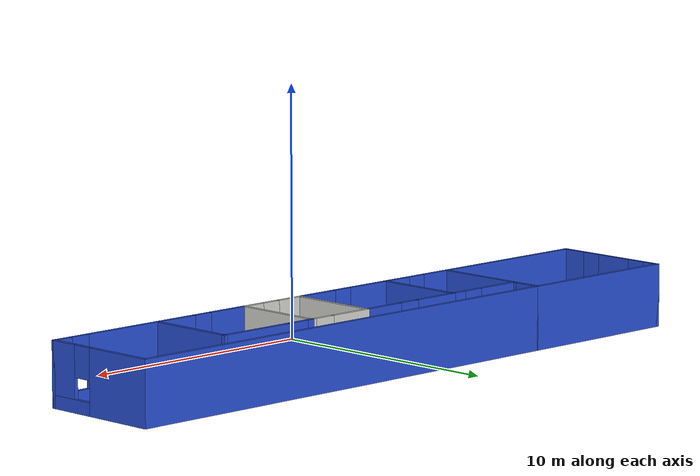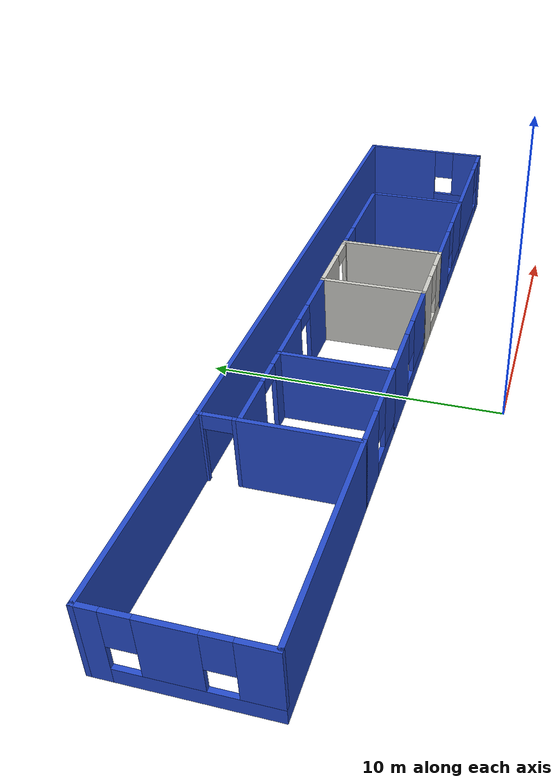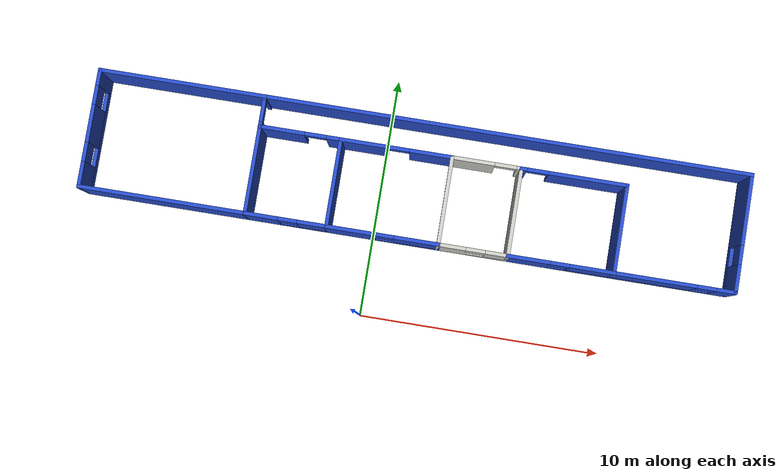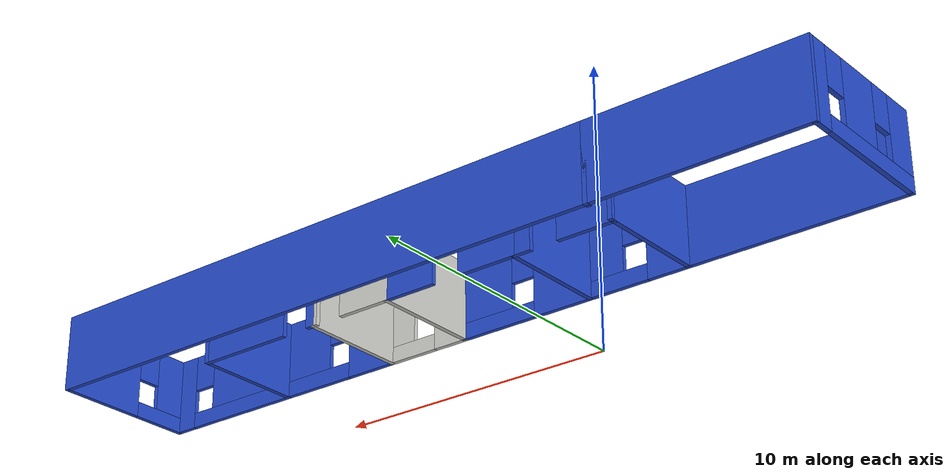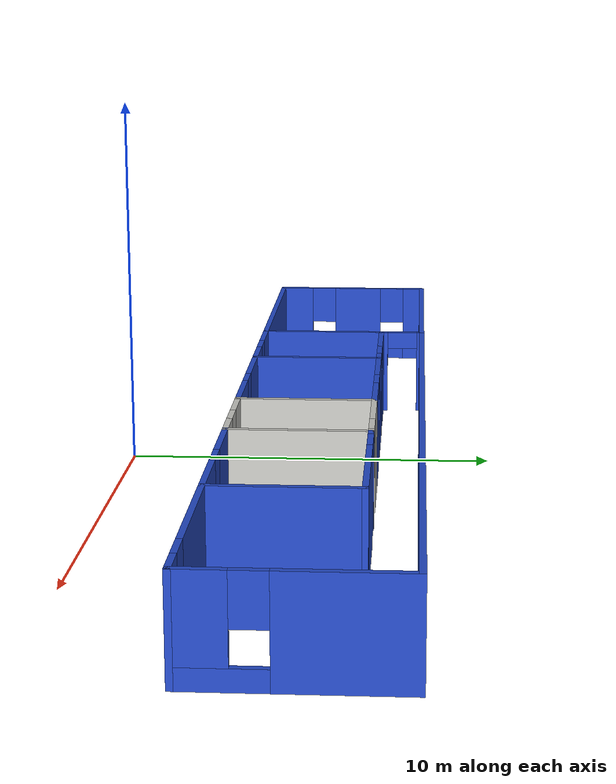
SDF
<?xml version='1.0'?>
<sdf version='1.7'>
  <model name='1147G'>
    <pose>1.41225 4.1051 0 0 -0 0</pose>
    <link name='Wall_11'>
      <collision name='Wall_11_Collision'>
        <geometry>
          <box>
            <size>7 0.15 2.5</size>
          </box>
        </geometry>
        <pose>0 0 1.25 0 -0 0</pose>
      </collision>
      <visual name='Wall_11_Visual'>
        <pose>0 0 1.25 0 -0 0</pose>
        <geometry>
          <box>
            <size>7 0.15 2.5</size>
          </box>
        </geometry>
        <material>
          <script>
            <uri>file://media/materials/scripts/gazebo.material</uri>
            <name>Gazebo/Blue</name>
          </script>
          <ambient>1 1 1 1</ambient>
        </material>
        <meta>
          <layer>0</layer>
        </meta>
      </visual>
      <pose>-10.05 4.0301 0 0 -0 0</pose>
    </link>
    <link name='Wall_14'>
      <pose>-13.475 1.6051 0 0 -0 -1.5708</pose>
      <visual name='Wall_14_Visual_0'>
        <pose>-2.13974 0 1.25 0 -0 0</pose>
        <geometry>
          <box>
            <size>0.720511 0.15 2.5</size>
          </box>
        </geometry>
        <material>
          <script>
            <uri>file://media/materials/scripts/gazebo.material</uri>
            <name>Gazebo/Blue</name>
          </script>
          <ambient>1 1 1 1</ambient>
        </material>
        <meta>
          <layer>0</layer>
        </meta>
      </visual>
      <collision name='Wall_14_Collision_0'>
        <geometry>
          <box>
            <size>0.720511 0.15 2.5</size>
          </box>
        </geometry>
        <pose>-2.13974 0 1.25 0 -0 0</pose>
      </collision>
      <visual name='Wall_14_Visual_1'>
        <pose>0.360256 0 0.25 0 -0 0</pose>
        <geometry>
          <box>
            <size>4.27949 0.15 0.5</size>
          </box>
        </geometry>
        <material>
          <script>
            <uri>file://media/materials/scripts/gazebo.material</uri>
            <name>Gazebo/Blue</name>
          </script>
          <ambient>1 1 1 1</ambient>
        </material>
        <meta>
          <layer>0</layer>
        </meta>
      </visual>
      <collision name='Wall_14_Collision_1'>
        <geometry>
          <box>
            <size>4.27949 0.15 0.5</size>
          </box>
        </geometry>
        <pose>0.360256 0 0.25 0 -0 0</pose>
      </collision>
      <visual name='Wall_14_Visual_2'>
        <pose>-0.192788 0 1.5 0 -0 0</pose>
        <geometry>
          <box>
            <size>1.5734 0.15 2</size>
          </box>
        </geometry>
        <material>
          <script>
            <uri>file://media/materials/scripts/gazebo.material</uri>
            <name>Gazebo/Blue</name>
          </script>
          <ambient>1 1 1 1</ambient>
        </material>
        <meta>
          <layer>0</layer>
        </meta>
      </visual>
      <collision name='Wall_14_Collision_2'>
        <geometry>
          <box>
            <size>1.5734 0.15 2</size>
          </box>
        </geometry>
        <pose>-0.192788 0 1.5 0 -0 0</pose>
      </collision>
      <visual name='Wall_14_Visual_3'>
        <pose>1.94696 0 1.5 0 -0 0</pose>
        <geometry>
          <box>
            <size>1.10609 0.15 2</size>
          </box>
        </geometry>
        <material>
          <script>
            <uri>file://media/materials/scripts/gazebo.material</uri>
            <name>Gazebo/Blue</name>
          </script>
          <ambient>1 1 1 1</ambient>
        </material>
        <meta>
          <layer>0</layer>
        </meta>
      </visual>
      <collision name='Wall_14_Collision_3'>
        <geometry>
          <box>
            <size>1.10609 0.15 2</size>
          </box>
        </geometry>
        <pose>1.94696 0 1.5 0 -0 0</pose>
      </collision>
      <visual name='Wall_14_Visual_4'>
        <pose>-1.37949 0 1.9 0 -0 0</pose>
        <geometry>
          <box>
            <size>0.8 0.15 1.2</size>
          </box>
        </geometry>
        <material>
          <script>
            <uri>file://media/materials/scripts/gazebo.material</uri>
            <name>Gazebo/Blue</name>
          </script>
          <ambient>1 1 1 1</ambient>
        </material>
        <meta>
          <layer>0</layer>
        </meta>
      </visual>
      <collision name='Wall_14_Collision_4'>
        <geometry>
          <box>
            <size>0.8 0.15 1.2</size>
          </box>
        </geometry>
        <pose>-1.37949 0 1.9 0 -0 0</pose>
      </collision>
      <visual name='Wall_14_Visual_5'>
        <pose>0.993912 0 1.9 0 -0 0</pose>
        <geometry>
          <box>
            <size>0.8 0.15 1.2</size>
          </box>
        </geometry>
        <material>
          <script>
            <uri>file://media/materials/scripts/gazebo.material</uri>
            <name>Gazebo/Blue</name>
          </script>
          <ambient>1 1 1 1</ambient>
        </material>
        <meta>
          <layer>0</layer>
        </meta>
      </visual>
      <collision name='Wall_14_Collision_5'>
        <geometry>
          <box>
            <size>0.8 0.15 1.2</size>
          </box>
        </geometry>
        <pose>0.993912 0 1.9 0 -0 0</pose>
      </collision>
    </link>
    <link name='Wall_15'>
      <collision name='Wall_15_Collision'>
        <geometry>
          <box>
            <size>7 0.15 2.5</size>
          </box>
        </geometry>
        <pose>0 0 1.25 0 -0 0</pose>
      </collision>
      <visual name='Wall_15_Visual'>
        <pose>0 0 1.25 0 -0 0</pose>
        <geometry>
          <box>
            <size>7 0.15 2.5</size>
          </box>
        </geometry>
        <material>
          <script>
            <uri>file://media/materials/scripts/gazebo.material</uri>
            <name>Gazebo/Blue</name>
          </script>
          <ambient>1 1 1 1</ambient>
        </material>
        <meta>
          <layer>0</layer>
        </meta>
      </visual>
      <pose>-10.05 -0.819903 0 0 -0 0</pose>
    </link>
    <link name='Wall_16'>
      <collision name='Wall_16_Collision'>
        <geometry>
          <box>
            <size>3.75 0.15 2.5</size>
          </box>
        </geometry>
        <pose>0 0 1.25 0 -0 0</pose>
      </collision>
      <visual name='Wall_16_Visual'>
        <pose>0 0 1.25 0 -0 0</pose>
        <geometry>
          <box>
            <size>3.75 0.15 2.5</size>
          </box>
        </geometry>
        <material>
          <script>
            <uri>file://media/materials/scripts/gazebo.material</uri>
            <name>Gazebo/Blue</name>
          </script>
          <ambient>1 1 1 1</ambient>
        </material>
        <meta>
          <layer>0</layer>
        </meta>
      </visual>
      <pose>-6.625 0.980097 0 0 -0 1.5708</pose>
    </link>
    <link name='Wall_18'>
      <pose>-4.95 -0.819903 0 0 -0 0</pose>
      <visual name='Wall_18_Visual_0'>
        <pose>-1.04538 0 1.25 0 -0 0</pose>
        <geometry>
          <box>
            <size>1.40924 0.15 2.5</size>
          </box>
        </geometry>
        <material>
          <script>
            <uri>file://media/materials/scripts/gazebo.material</uri>
            <name>Gazebo/Blue</name>
          </script>
          <ambient>1 1 1 1</ambient>
        </material>
        <meta>
          <layer>0</layer>
        </meta>
      </visual>
      <collision name='Wall_18_Collision_0'>
        <geometry>
          <box>
            <size>1.40924 0.15 2.5</size>
          </box>
        </geometry>
        <pose>-1.04538 0 1.25 0 -0 0</pose>
      </collision>
      <visual name='Wall_18_Visual_1'>
        <pose>0.704619 0 0.25 0 -0 0</pose>
        <geometry>
          <box>
            <size>2.09076 0.15 0.5</size>
          </box>
        </geometry>
        <material>
          <script>
            <uri>file://media/materials/scripts/gazebo.material</uri>
            <name>Gazebo/Blue</name>
          </script>
          <ambient>1 1 1 1</ambient>
        </material>
        <meta>
          <layer>0</layer>
        </meta>
      </visual>
      <collision name='Wall_18_Collision_1'>
        <geometry>
          <box>
            <size>2.09076 0.15 0.5</size>
          </box>
        </geometry>
        <pose>0.704619 0 0.25 0 -0 0</pose>
      </collision>
      <visual name='Wall_18_Visual_2'>
        <pose>1.10462 0 1.5 0 -0 0</pose>
        <geometry>
          <box>
            <size>1.29076 0.15 2</size>
          </box>
        </geometry>
        <material>
          <script>
            <uri>file://media/materials/scripts/gazebo.material</uri>
            <name>Gazebo/Blue</name>
          </script>
          <ambient>1 1 1 1</ambient>
        </material>
        <meta>
          <layer>0</layer>
        </meta>
      </visual>
      <collision name='Wall_18_Collision_2'>
        <geometry>
          <box>
            <size>1.29076 0.15 2</size>
          </box>
        </geometry>
        <pose>1.10462 0 1.5 0 -0 0</pose>
      </collision>
      <visual name='Wall_18_Visual_3'>
        <pose>0.059238 0 1.9 0 -0 0</pose>
        <geometry>
          <box>
            <size>0.8 0.15 1.2</size>
          </box>
        </geometry>
        <material>
          <script>
            <uri>file://media/materials/scripts/gazebo.material</uri>
            <name>Gazebo/Blue</name>
          </script>
          <ambient>1 1 1 1</ambient>
        </material>
        <meta>
          <layer>0</layer>
        </meta>
      </visual>
      <collision name='Wall_18_Collision_3'>
        <geometry>
          <box>
            <size>0.8 0.15 1.2</size>
          </box>
        </geometry>
        <pose>0.059238 0 1.9 0 -0 0</pose>
      </collision>
    </link>
    <link name='Wall_19'>
      <collision name='Wall_19_Collision'>
        <geometry>
          <box>
            <size>3.75 0.15 2.5</size>
          </box>
        </geometry>
        <pose>0 0 1.25 0 -0 0</pose>
      </collision>
      <visual name='Wall_19_Visual'>
        <pose>0 0 1.25 0 -0 0</pose>
        <geometry>
          <box>
            <size>3.75 0.15 2.5</size>
          </box>
        </geometry>
        <material>
          <script>
            <uri>file://media/materials/scripts/gazebo.material</uri>
            <name>Gazebo/Blue</name>
          </script>
          <ambient>1 1 1 1</ambient>
        </material>
        <meta>
          <layer>0</layer>
        </meta>
      </visual>
      <pose>-3.275 0.980097 0 0 -0 1.5708</pose>
    </link>
    <link name='Wall_21'>
      <pose>-0.975 -0.819903 0 0 -0 0</pose>
      <visual name='Wall_21_Visual_0'>
        <pose>-1.35414 0 1.25 0 -0 0</pose>
        <geometry>
          <box>
            <size>2.04173 0.15 2.5</size>
          </box>
        </geometry>
        <material>
          <script>
            <uri>file://media/materials/scripts/gazebo.material</uri>
            <name>Gazebo/Blue</name>
          </script>
          <ambient>1 1 1 1</ambient>
        </material>
        <meta>
          <layer>0</layer>
        </meta>
      </visual>
      <collision name='Wall_21_Collision_0'>
        <geometry>
          <box>
            <size>2.04173 0.15 2.5</size>
          </box>
        </geometry>
        <pose>-1.35414 0 1.25 0 -0 0</pose>
      </collision>
      <visual name='Wall_21_Visual_1'>
        <pose>1.02086 0 0.25 0 -0 0</pose>
        <geometry>
          <box>
            <size>2.70827 0.15 0.5</size>
          </box>
        </geometry>
        <material>
          <script>
            <uri>file://media/materials/scripts/gazebo.material</uri>
            <name>Gazebo/Blue</name>
          </script>
          <ambient>1 1 1 1</ambient>
        </material>
        <meta>
          <layer>0</layer>
        </meta>
      </visual>
      <collision name='Wall_21_Collision_1'>
        <geometry>
          <box>
            <size>2.70827 0.15 0.5</size>
          </box>
        </geometry>
        <pose>1.02086 0 0.25 0 -0 0</pose>
      </collision>
      <visual name='Wall_21_Visual_2'>
        <pose>1.42086 0 1.5 0 -0 0</pose>
        <geometry>
          <box>
            <size>1.90827 0.15 2</size>
          </box>
        </geometry>
        <material>
          <script>
            <uri>file://media/materials/scripts/gazebo.material</uri>
            <name>Gazebo/Blue</name>
          </script>
          <ambient>1 1 1 1</ambient>
        </material>
        <meta>
          <layer>0</layer>
        </meta>
      </visual>
      <collision name='Wall_21_Collision_2'>
        <geometry>
          <box>
            <size>1.90827 0.15 2</size>
          </box>
        </geometry>
        <pose>1.42086 0 1.5 0 -0 0</pose>
      </collision>
      <visual name='Wall_21_Visual_3'>
        <pose>0.066725 0 1.9 0 -0 0</pose>
        <geometry>
          <box>
            <size>0.8 0.15 1.2</size>
          </box>
        </geometry>
        <material>
          <script>
            <uri>file://media/materials/scripts/gazebo.material</uri>
            <name>Gazebo/Blue</name>
          </script>
          <ambient>1 1 1 1</ambient>
        </material>
        <meta>
          <layer>0</layer>
        </meta>
      </visual>
      <collision name='Wall_21_Collision_3'>
        <geometry>
          <box>
            <size>0.8 0.15 1.2</size>
          </box>
        </geometry>
        <pose>0.066725 0 1.9 0 -0 0</pose>
      </collision>
    </link>
    <link name='Wall_22'>
      <collision name='Wall_22_Collision'>
        <geometry>
          <box>
            <size>3.75 0.15 2.5</size>
          </box>
        </geometry>
        <pose>0 0 1.25 0 -0 0</pose>
      </collision>
      <visual name='Wall_22_Visual'>
        <pose>0 0 1.25 0 -0 0</pose>
        <geometry>
          <box>
            <size>3.75 0.15 2.5</size>
          </box>
        </geometry>
        <material>
          <script>
            <uri>file://media/materials/scripts/gazebo.material</uri>
            <name>Gazebo/CeilingTiled</name>
          </script>
          <ambient>1 1 1 1</ambient>
        </material>
        <meta>
          <layer>0</layer>
        </meta>
      </visual>
      <pose>1.325 0.980097 0 0 -0 1.5708</pose>
    </link>
    <link name='Wall_24'>
      <pose>2.75 -0.819903 0 0 -0 0</pose>
      <visual name='Wall_24_Visual_0'>
        <pose>-0.898519 0 1.25 0 -0 0</pose>
        <geometry>
          <box>
            <size>1.20296 0.15 2.5</size>
          </box>
        </geometry>
        <material>
          <script>
            <uri>file://media/materials/scripts/gazebo.material</uri>
            <name>Gazebo/CeilingTiled</name>
          </script>
          <ambient>1 1 1 1</ambient>
        </material>
        <meta>
          <layer>0</layer>
        </meta>
      </visual>
      <collision name='Wall_24_Collision_0'>
        <geometry>
          <box>
            <size>1.20296 0.15 2.5</size>
          </box>
        </geometry>
        <pose>-0.898519 0 1.25 0 -0 0</pose>
      </collision>
      <visual name='Wall_24_Visual_1'>
        <pose>0.601481 0 0.25 0 -0 0</pose>
        <geometry>
          <box>
            <size>1.79704 0.15 0.5</size>
          </box>
        </geometry>
        <material>
          <script>
            <uri>file://media/materials/scripts/gazebo.material</uri>
            <name>Gazebo/CeilingTiled</name>
          </script>
          <ambient>1 1 1 1</ambient>
        </material>
        <meta>
          <layer>0</layer>
        </meta>
      </visual>
      <collision name='Wall_24_Collision_1'>
        <geometry>
          <box>
            <size>1.79704 0.15 0.5</size>
          </box>
        </geometry>
        <pose>0.601481 0 0.25 0 -0 0</pose>
      </collision>
      <visual name='Wall_24_Visual_2'>
        <pose>1.00148 0 1.5 0 -0 0</pose>
        <geometry>
          <box>
            <size>0.997037 0.15 2</size>
          </box>
        </geometry>
        <material>
          <script>
            <uri>file://media/materials/scripts/gazebo.material</uri>
            <name>Gazebo/CeilingTiled</name>
          </script>
          <ambient>1 1 1 1</ambient>
        </material>
        <meta>
          <layer>0</layer>
        </meta>
      </visual>
      <collision name='Wall_24_Collision_2'>
        <geometry>
          <box>
            <size>0.997037 0.15 2</size>
          </box>
        </geometry>
        <pose>1.00148 0 1.5 0 -0 0</pose>
      </collision>
      <visual name='Wall_24_Visual_3'>
        <pose>0.102963 0 1.9 0 -0 0</pose>
        <geometry>
          <box>
            <size>0.8 0.15 1.2</size>
          </box>
        </geometry>
        <material>
          <script>
            <uri>file://media/materials/scripts/gazebo.material</uri>
            <name>Gazebo/CeilingTiled</name>
          </script>
          <ambient>1 1 1 1</ambient>
        </material>
        <meta>
          <layer>0</layer>
        </meta>
      </visual>
      <collision name='Wall_24_Collision_3'>
        <geometry>
          <box>
            <size>0.8 0.15 1.2</size>
          </box>
        </geometry>
        <pose>0.102963 0 1.9 0 -0 0</pose>
      </collision>
    </link>
    <link name='Wall_25'>
      <collision name='Wall_25_Collision'>
        <geometry>
          <box>
            <size>3.75 0.15 2.5</size>
          </box>
        </geometry>
        <pose>0 0 1.25 0 -0 0</pose>
      </collision>
      <visual name='Wall_25_Visual'>
        <pose>0 0 1.25 0 -0 0</pose>
        <geometry>
          <box>
            <size>3.75 0.15 2.5</size>
          </box>
        </geometry>
        <material>
          <script>
            <uri>file://media/materials/scripts/gazebo.material</uri>
            <name>Gazebo/CeilingTiled</name>
          </script>
          <ambient>1 1 1 1</ambient>
        </material>
        <meta>
          <layer>0</layer>
        </meta>
      </visual>
      <pose>4.175 0.980097 0 0 -0 1.5708</pose>
    </link>
    <link name='Wall_27'>
      <pose>6.35 -0.819903 0 0 -0 0</pose>
      <visual name='Wall_27_Visual_0'>
        <pose>-1.34375 0 1.25 0 -0 0</pose>
        <geometry>
          <box>
            <size>1.8125 0.15 2.5</size>
          </box>
        </geometry>
        <material>
          <script>
            <uri>file://media/materials/scripts/gazebo.material</uri>
            <name>Gazebo/Blue</name>
          </script>
          <ambient>1 1 1 1</ambient>
        </material>
        <meta>
          <layer>0</layer>
        </meta>
      </visual>
      <collision name='Wall_27_Collision_0'>
        <geometry>
          <box>
            <size>1.8125 0.15 2.5</size>
          </box>
        </geometry>
        <pose>-1.34375 0 1.25 0 -0 0</pose>
      </collision>
      <visual name='Wall_27_Visual_1'>
        <pose>0.906249 0 0.25 0 -0 0</pose>
        <geometry>
          <box>
            <size>2.6875 0.15 0.5</size>
          </box>
        </geometry>
        <material>
          <script>
            <uri>file://media/materials/scripts/gazebo.material</uri>
            <name>Gazebo/Blue</name>
          </script>
          <ambient>1 1 1 1</ambient>
        </material>
        <meta>
          <layer>0</layer>
        </meta>
      </visual>
      <collision name='Wall_27_Collision_1'>
        <geometry>
          <box>
            <size>2.6875 0.15 0.5</size>
          </box>
        </geometry>
        <pose>0.906249 0 0.25 0 -0 0</pose>
      </collision>
      <visual name='Wall_27_Visual_2'>
        <pose>1.30625 0 1.5 0 -0 0</pose>
        <geometry>
          <box>
            <size>1.8875 0.15 2</size>
          </box>
        </geometry>
        <material>
          <script>
            <uri>file://media/materials/scripts/gazebo.material</uri>
            <name>Gazebo/Blue</name>
          </script>
          <ambient>1 1 1 1</ambient>
        </material>
        <meta>
          <layer>0</layer>
        </meta>
      </visual>
      <collision name='Wall_27_Collision_2'>
        <geometry>
          <box>
            <size>1.8875 0.15 2</size>
          </box>
        </geometry>
        <pose>1.30625 0 1.5 0 -0 0</pose>
      </collision>
      <visual name='Wall_27_Visual_3'>
        <pose>-0.037502 0 1.9 0 -0 0</pose>
        <geometry>
          <box>
            <size>0.8 0.15 1.2</size>
          </box>
        </geometry>
        <material>
          <script>
            <uri>file://media/materials/scripts/gazebo.material</uri>
            <name>Gazebo/Blue</name>
          </script>
          <ambient>1 1 1 1</ambient>
        </material>
        <meta>
          <layer>0</layer>
        </meta>
      </visual>
      <collision name='Wall_27_Collision_3'>
        <geometry>
          <box>
            <size>0.8 0.15 1.2</size>
          </box>
        </geometry>
        <pose>-0.037502 0 1.9 0 -0 0</pose>
      </collision>
    </link>
    <link name='Wall_28'>
      <collision name='Wall_28_Collision'>
        <geometry>
          <box>
            <size>3.75 0.15 2.5</size>
          </box>
        </geometry>
        <pose>0 0 1.25 0 -0 0</pose>
      </collision>
      <visual name='Wall_28_Visual'>
        <pose>0 0 1.25 0 -0 0</pose>
        <geometry>
          <box>
            <size>3.75 0.15 2.5</size>
          </box>
        </geometry>
        <material>
          <script>
            <uri>file://media/materials/scripts/gazebo.material</uri>
            <name>Gazebo/Blue</name>
          </script>
          <ambient>1 1 1 1</ambient>
        </material>
        <meta>
          <layer>0</layer>
        </meta>
      </visual>
      <pose>8.525 0.980097 0 0 -0 1.5708</pose>
    </link>
    <link name='Wall_30'>
      <pose>6.35 2.7801 0 0 -0 3.14159</pose>
      <visual name='Wall_30_Visual_0'>
        <pose>-0.60716 0 1.25 0 -0 0</pose>
        <geometry>
          <box>
            <size>3.28568 0.15 2.5</size>
          </box>
        </geometry>
        <material>
          <script>
            <uri>file://media/materials/scripts/gazebo.material</uri>
            <name>Gazebo/Blue</name>
          </script>
          <ambient>1 1 1 1</ambient>
        </material>
        <meta>
          <layer>0</layer>
        </meta>
      </visual>
      <collision name='Wall_30_Collision_0'>
        <geometry>
          <box>
            <size>3.28568 0.15 2.5</size>
          </box>
        </geometry>
        <pose>-0.60716 0 1.25 0 -0 0</pose>
      </collision>
      <visual name='Wall_30_Visual_1'>
        <pose>2.09284 0 1.25 0 -0 0</pose>
        <geometry>
          <box>
            <size>0.31432 0.15 2.5</size>
          </box>
        </geometry>
        <material>
          <script>
            <uri>file://media/materials/scripts/gazebo.material</uri>
            <name>Gazebo/Blue</name>
          </script>
          <ambient>1 1 1 1</ambient>
        </material>
        <meta>
          <layer>0</layer>
        </meta>
      </visual>
      <collision name='Wall_30_Collision_1'>
        <geometry>
          <box>
            <size>0.31432 0.15 2.5</size>
          </box>
        </geometry>
        <pose>2.09284 0 1.25 0 -0 0</pose>
      </collision>
      <visual name='Wall_30_Visual_2'>
        <pose>1.48568 0 2.25 0 -0 0</pose>
        <geometry>
          <box>
            <size>0.9 0.15 0.5</size>
          </box>
        </geometry>
        <material>
          <script>
            <uri>file://media/materials/scripts/gazebo.material</uri>
            <name>Gazebo/Blue</name>
          </script>
          <ambient>1 1 1 1</ambient>
        </material>
        <meta>
          <layer>0</layer>
        </meta>
      </visual>
      <collision name='Wall_30_Collision_2'>
        <geometry>
          <box>
            <size>0.9 0.15 0.5</size>
          </box>
        </geometry>
        <pose>1.48568 0 2.25 0 -0 0</pose>
      </collision>
    </link>
    <link name='Wall_31'>
      <pose>2.75 2.7801 0 0 -0 3.14159</pose>
      <visual name='Wall_31_Visual_0'>
        <pose>-1.36841 0 1.25 0 -0 0</pose>
        <geometry>
          <box>
            <size>0.263175 0.15 2.5</size>
          </box>
        </geometry>
        <material>
          <script>
            <uri>file://media/materials/scripts/gazebo.material</uri>
            <name>Gazebo/CeilingTiled</name>
          </script>
          <ambient>1 1 1 1</ambient>
        </material>
        <meta>
          <layer>0</layer>
        </meta>
      </visual>
      <collision name='Wall_31_Collision_0'>
        <geometry>
          <box>
            <size>0.263175 0.15 2.5</size>
          </box>
        </geometry>
        <pose>-1.36841 0 1.25 0 -0 0</pose>
      </collision>
      <visual name='Wall_31_Visual_1'>
        <pose>0.581588 0 1.25 0 -0 0</pose>
        <geometry>
          <box>
            <size>1.83682 0.15 2.5</size>
          </box>
        </geometry>
        <material>
          <script>
            <uri>file://media/materials/scripts/gazebo.material</uri>
            <name>Gazebo/CeilingTiled</name>
          </script>
          <ambient>1 1 1 1</ambient>
        </material>
        <meta>
          <layer>0</layer>
        </meta>
      </visual>
      <collision name='Wall_31_Collision_1'>
        <geometry>
          <box>
            <size>1.83682 0.15 2.5</size>
          </box>
        </geometry>
        <pose>0.581588 0 1.25 0 -0 0</pose>
      </collision>
      <visual name='Wall_31_Visual_2'>
        <pose>-0.786825 0 2.25 0 -0 0</pose>
        <geometry>
          <box>
            <size>0.9 0.15 0.5</size>
          </box>
        </geometry>
        <material>
          <script>
            <uri>file://media/materials/scripts/gazebo.material</uri>
            <name>Gazebo/CeilingTiled</name>
          </script>
          <ambient>1 1 1 1</ambient>
        </material>
        <meta>
          <layer>0</layer>
        </meta>
      </visual>
      <collision name='Wall_31_Collision_2'>
        <geometry>
          <box>
            <size>0.9 0.15 0.5</size>
          </box>
        </geometry>
        <pose>-0.786825 0 2.25 0 -0 0</pose>
      </collision>
    </link>
    <link name='Wall_32'>
      <pose>-0.975 2.7801 0 0 -0 3.14159</pose>
      <visual name='Wall_32_Visual_0'>
        <pose>-1.45592 0 1.25 0 -0 0</pose>
        <geometry>
          <box>
            <size>1.83816 0.15 2.5</size>
          </box>
        </geometry>
        <material>
          <script>
            <uri>file://media/materials/scripts/gazebo.material</uri>
            <name>Gazebo/Blue</name>
          </script>
          <ambient>1 1 1 1</ambient>
        </material>
        <meta>
          <layer>0</layer>
        </meta>
      </visual>
      <collision name='Wall_32_Collision_0'>
        <geometry>
          <box>
            <size>1.83816 0.15 2.5</size>
          </box>
        </geometry>
        <pose>-1.45592 0 1.25 0 -0 0</pose>
      </collision>
      <visual name='Wall_32_Visual_1'>
        <pose>1.36908 0 1.25 0 -0 0</pose>
        <geometry>
          <box>
            <size>2.01184 0.15 2.5</size>
          </box>
        </geometry>
        <material>
          <script>
            <uri>file://media/materials/scripts/gazebo.material</uri>
            <name>Gazebo/Blue</name>
          </script>
          <ambient>1 1 1 1</ambient>
        </material>
        <meta>
          <layer>0</layer>
        </meta>
      </visual>
      <collision name='Wall_32_Collision_1'>
        <geometry>
          <box>
            <size>2.01184 0.15 2.5</size>
          </box>
        </geometry>
        <pose>1.36908 0 1.25 0 -0 0</pose>
      </collision>
      <visual name='Wall_32_Visual_2'>
        <pose>-0.086839 0 2.25 0 -0 0</pose>
        <geometry>
          <box>
            <size>0.9 0.15 0.5</size>
          </box>
        </geometry>
        <material>
          <script>
            <uri>file://media/materials/scripts/gazebo.material</uri>
            <name>Gazebo/Blue</name>
          </script>
          <ambient>1 1 1 1</ambient>
        </material>
        <meta>
          <layer>0</layer>
        </meta>
      </visual>
      <collision name='Wall_32_Collision_2'>
        <geometry>
          <box>
            <size>0.9 0.15 0.5</size>
          </box>
        </geometry>
        <pose>-0.086839 0 2.25 0 -0 0</pose>
      </collision>
    </link>
    <link name='Wall_33'>
      <pose>-4.95 2.7801 0 0 -0 3.14159</pose>
      <visual name='Wall_33_Visual_0'>
        <pose>-1.41121 0 1.25 0 -0 0</pose>
        <geometry>
          <box>
            <size>0.677582 0.15 2.5</size>
          </box>
        </geometry>
        <material>
          <script>
            <uri>file://media/materials/scripts/gazebo.material</uri>
            <name>Gazebo/Blue</name>
          </script>
          <ambient>1 1 1 1</ambient>
        </material>
        <meta>
          <layer>0</layer>
        </meta>
      </visual>
      <collision name='Wall_33_Collision_0'>
        <geometry>
          <box>
            <size>0.677582 0.15 2.5</size>
          </box>
        </geometry>
        <pose>-1.41121 0 1.25 0 -0 0</pose>
      </collision>
      <visual name='Wall_33_Visual_1'>
        <pose>0.788791 0 1.25 0 -0 0</pose>
        <geometry>
          <box>
            <size>1.92242 0.15 2.5</size>
          </box>
        </geometry>
        <material>
          <script>
            <uri>file://media/materials/scripts/gazebo.material</uri>
            <name>Gazebo/Blue</name>
          </script>
          <ambient>1 1 1 1</ambient>
        </material>
        <meta>
          <layer>0</layer>
        </meta>
      </visual>
      <collision name='Wall_33_Collision_1'>
        <geometry>
          <box>
            <size>1.92242 0.15 2.5</size>
          </box>
        </geometry>
        <pose>0.788791 0 1.25 0 -0 0</pose>
      </collision>
      <visual name='Wall_33_Visual_2'>
        <pose>-0.622418 0 2.25 0 -0 0</pose>
        <geometry>
          <box>
            <size>0.9 0.15 0.5</size>
          </box>
        </geometry>
        <material>
          <script>
            <uri>file://media/materials/scripts/gazebo.material</uri>
            <name>Gazebo/Blue</name>
          </script>
          <ambient>1 1 1 1</ambient>
        </material>
        <meta>
          <layer>0</layer>
        </meta>
      </visual>
      <collision name='Wall_33_Collision_2'>
        <geometry>
          <box>
            <size>0.9 0.15 0.5</size>
          </box>
        </geometry>
        <pose>-0.622418 0 2.25 0 -0 0</pose>
      </collision>
    </link>
    <link name='Wall_34'>
      <pose>-6.625 3.4051 0 0 -0 1.5708</pose>
      <visual name='Wall_34_Visual_0'>
        <pose>-0.564006 0 1.25 0 -0 0</pose>
        <geometry>
          <box>
            <size>0.271987 0.15 2.5</size>
          </box>
        </geometry>
        <material>
          <script>
            <uri>file://media/materials/scripts/gazebo.material</uri>
            <name>Gazebo/Blue</name>
          </script>
          <ambient>1 1 1 1</ambient>
        </material>
        <meta>
          <layer>0</layer>
        </meta>
      </visual>
      <collision name='Wall_34_Collision_0'>
        <geometry>
          <box>
            <size>0.271987 0.15 2.5</size>
          </box>
        </geometry>
        <pose>-0.564006 0 1.25 0 -0 0</pose>
      </collision>
      <visual name='Wall_34_Visual_1'>
        <pose>0.585994 0 1.25 0 -0 0</pose>
        <geometry>
          <box>
            <size>0.228013 0.15 2.5</size>
          </box>
        </geometry>
        <material>
          <script>
            <uri>file://media/materials/scripts/gazebo.material</uri>
            <name>Gazebo/Blue</name>
          </script>
          <ambient>1 1 1 1</ambient>
        </material>
        <meta>
          <layer>0</layer>
        </meta>
      </visual>
      <collision name='Wall_34_Collision_1'>
        <geometry>
          <box>
            <size>0.228013 0.15 2.5</size>
          </box>
        </geometry>
        <pose>0.585994 0 1.25 0 -0 0</pose>
      </collision>
      <visual name='Wall_34_Visual_2'>
        <pose>0.021987 0 2.25 0 -0 0</pose>
        <geometry>
          <box>
            <size>0.9 0.15 0.5</size>
          </box>
        </geometry>
        <material>
          <script>
            <uri>file://media/materials/scripts/gazebo.material</uri>
            <name>Gazebo/Blue</name>
          </script>
          <ambient>1 1 1 1</ambient>
        </material>
        <meta>
          <layer>0</layer>
        </meta>
      </visual>
      <collision name='Wall_34_Collision_2'>
        <geometry>
          <box>
            <size>0.9 0.15 0.5</size>
          </box>
        </geometry>
        <pose>0.021987 0 2.25 0 -0 0</pose>
      </collision>
    </link>
    <link name='Wall_35'>
      <collision name='Wall_35_Collision'>
        <geometry>
          <box>
            <size>20.25 0.15 2.5</size>
          </box>
        </geometry>
        <pose>0 0 1.25 0 -0 0</pose>
      </collision>
      <visual name='Wall_35_Visual'>
        <pose>0 0 1.25 0 -0 0</pose>
        <geometry>
          <box>
            <size>20.25 0.15 2.5</size>
          </box>
        </geometry>
        <material>
          <script>
            <uri>file://media/materials/scripts/gazebo.material</uri>
            <name>Gazebo/Blue</name>
          </script>
          <ambient>1 1 1 1</ambient>
        </material>
        <meta>
          <layer>0</layer>
        </meta>
      </visual>
      <pose>3.425 4.0301 0 0 -0 0</pose>
    </link>
    <link name='Wall_36'>
      <pose>13.475 1.6051 0 0 -0 -1.5708</pose>
      <visual name='Wall_36_Visual_0'>
        <pose>-1.01338 0 1.25 0 -0 0</pose>
        <geometry>
          <box>
            <size>2.97323 0.15 2.5</size>
          </box>
        </geometry>
        <material>
          <script>
            <uri>file://media/materials/scripts/gazebo.material</uri>
            <name>Gazebo/Blue</name>
          </script>
          <ambient>1 1 1 1</ambient>
        </material>
        <meta>
          <layer>0</layer>
        </meta>
      </visual>
      <collision name='Wall_36_Collision_0'>
        <geometry>
          <box>
            <size>2.97323 0.15 2.5</size>
          </box>
        </geometry>
        <pose>-1.01338 0 1.25 0 -0 0</pose>
      </collision>
      <visual name='Wall_36_Visual_1'>
        <pose>1.48662 0 0.25 0 -0 0</pose>
        <geometry>
          <box>
            <size>2.02677 0.15 0.5</size>
          </box>
        </geometry>
        <material>
          <script>
            <uri>file://media/materials/scripts/gazebo.material</uri>
            <name>Gazebo/Blue</name>
          </script>
          <ambient>1 1 1 1</ambient>
        </material>
        <meta>
          <layer>0</layer>
        </meta>
      </visual>
      <collision name='Wall_36_Collision_1'>
        <geometry>
          <box>
            <size>2.02677 0.15 0.5</size>
          </box>
        </geometry>
        <pose>1.48662 0 0.25 0 -0 0</pose>
      </collision>
      <visual name='Wall_36_Visual_2'>
        <pose>1.88661 0 1.5 0 -0 0</pose>
        <geometry>
          <box>
            <size>1.22677 0.15 2</size>
          </box>
        </geometry>
        <material>
          <script>
            <uri>file://media/materials/scripts/gazebo.material</uri>
            <name>Gazebo/Blue</name>
          </script>
          <ambient>1 1 1 1</ambient>
        </material>
        <meta>
          <layer>0</layer>
        </meta>
      </visual>
      <collision name='Wall_36_Collision_2'>
        <geometry>
          <box>
            <size>1.22677 0.15 2</size>
          </box>
        </geometry>
        <pose>1.88661 0 1.5 0 -0 0</pose>
      </collision>
      <visual name='Wall_36_Visual_3'>
        <pose>0.873231 0 1.9 0 -0 0</pose>
        <geometry>
          <box>
            <size>0.8 0.15 1.2</size>
          </box>
        </geometry>
        <material>
          <script>
            <uri>file://media/materials/scripts/gazebo.material</uri>
            <name>Gazebo/Blue</name>
          </script>
          <ambient>1 1 1 1</ambient>
        </material>
        <meta>
          <layer>0</layer>
        </meta>
      </visual>
      <collision name='Wall_36_Collision_3'>
        <geometry>
          <box>
            <size>0.8 0.15 1.2</size>
          </box>
        </geometry>
        <pose>0.873231 0 1.9 0 -0 0</pose>
      </collision>
    </link>
    <link name='Wall_37'>
      <pose>11 -0.819903 0 0 -0 -3.14159</pose>
      <visual name='Wall_37_Visual_0'>
        <pose>-2.12817 0 1.25 0 -0 0</pose>
        <geometry>
          <box>
            <size>0.843658 0.15 2.5</size>
          </box>
        </geometry>
        <material>
          <script>
            <uri>file://media/materials/scripts/gazebo.material</uri>
            <name>Gazebo/Blue</name>
          </script>
          <ambient>1 1 1 1</ambient>
        </material>
        <meta>
          <layer>0</layer>
        </meta>
      </visual>
      <collision name='Wall_37_Collision_0'>
        <geometry>
          <box>
            <size>0.843658 0.15 2.5</size>
          </box>
        </geometry>
        <pose>-2.12817 0 1.25 0 -0 0</pose>
      </collision>
      <visual name='Wall_37_Visual_1'>
        <pose>0.421829 0 0.25 0 -0 0</pose>
        <geometry>
          <box>
            <size>4.25634 0.15 0.5</size>
          </box>
        </geometry>
        <material>
          <script>
            <uri>file://media/materials/scripts/gazebo.material</uri>
            <name>Gazebo/Blue</name>
          </script>
          <ambient>1 1 1 1</ambient>
        </material>
        <meta>
          <layer>0</layer>
        </meta>
      </visual>
      <collision name='Wall_37_Collision_1'>
        <geometry>
          <box>
            <size>4.25634 0.15 0.5</size>
          </box>
        </geometry>
        <pose>0.421829 0 0.25 0 -0 0</pose>
      </collision>
      <visual name='Wall_37_Visual_2'>
        <pose>0.821829 0 1.5 0 -0 0</pose>
        <geometry>
          <box>
            <size>3.45634 0.15 2</size>
          </box>
        </geometry>
        <material>
          <script>
            <uri>file://media/materials/scripts/gazebo.material</uri>
            <name>Gazebo/Blue</name>
          </script>
          <ambient>1 1 1 1</ambient>
        </material>
        <meta>
          <layer>0</layer>
        </meta>
      </visual>
      <collision name='Wall_37_Collision_2'>
        <geometry>
          <box>
            <size>3.45634 0.15 2</size>
          </box>
        </geometry>
        <pose>0.821829 0 1.5 0 -0 0</pose>
      </collision>
      <visual name='Wall_37_Visual_3'>
        <pose>-1.30634 0 1.9 0 -0 0</pose>
        <geometry>
          <box>
            <size>0.8 0.15 1.2</size>
          </box>
        </geometry>
        <material>
          <script>
            <uri>file://media/materials/scripts/gazebo.material</uri>
            <name>Gazebo/Blue</name>
          </script>
          <ambient>1 1 1 1</ambient>
        </material>
        <meta>
          <layer>0</layer>
        </meta>
      </visual>
      <collision name='Wall_37_Collision_3'>
        <geometry>
          <box>
            <size>0.8 0.15 1.2</size>
          </box>
        </geometry>
        <pose>-1.30634 0 1.9 0 -0 0</pose>
      </collision>
    </link>
    <static>1</static>
  </model>
</sdf>
